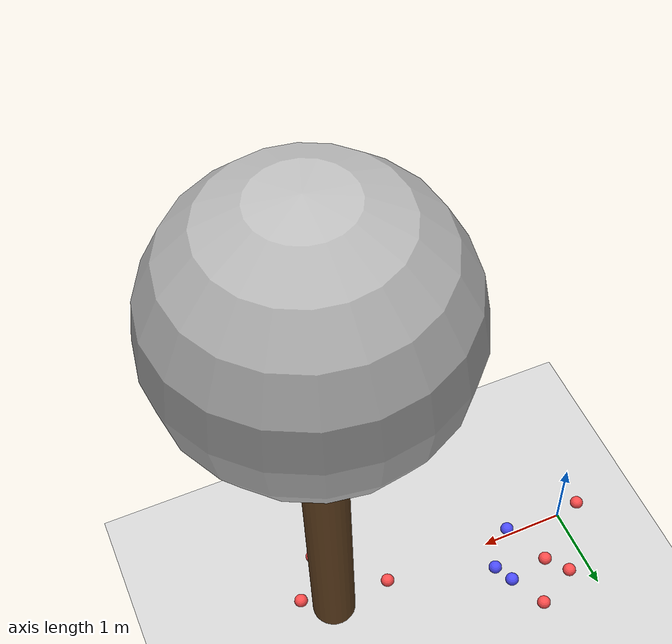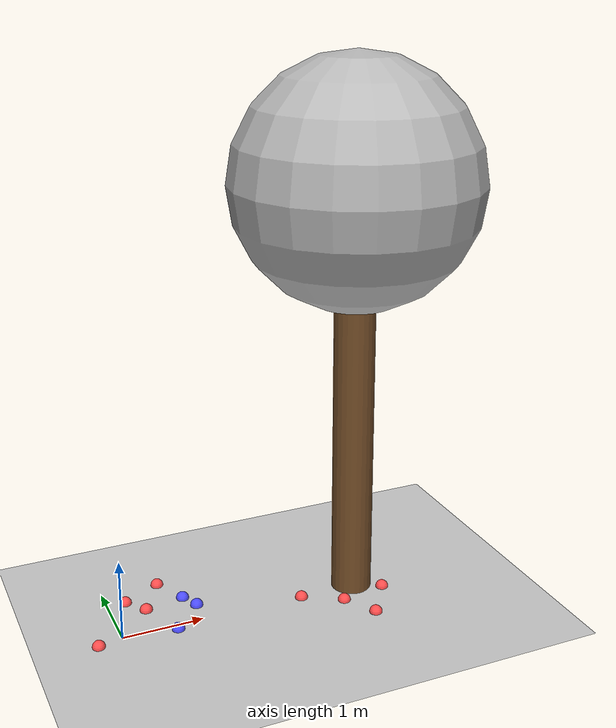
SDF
<sdf version="1.7">
 <world name="default">
  <model name="ground_plane">
   <static>1</static>
   <link name="link">
    <collision name="collision">
     <geometry><plane><normal>0 0 1</normal><size>100 100</size></plane></geometry>
     <surface>
      <contact><collide_bitmask>65535</collide_bitmask></contact>
      <friction><ode><mu>100</mu><mu2>50</mu2></ode></friction>
     </surface>
    </collision>
    <visual name="visual">
     <cast_shadows>0</cast_shadows>
     <geometry><plane><normal>0 0 1</normal><size>100 100</size></plane></geometry>
     <material>
      <script><uri>file://media/materials/scripts/gazebo.material</uri><name>Gazebo/Grey</name></script>
     </material>
    </visual>
   </link>
  </model>
  <model name="tree_simple_97">
   <static>1</static>
   <link name="link">
    <pose>0 0 0.1 0 -0 0</pose>
    <inertial>
     <mass>666</mass>
     <inertia>
      <ixx>0.0861167</ixx>
      <ixy>0</ixy>
      <ixz>0</ixz>
      <iyy>0.0861167</iyy>
      <iyz>0</iyz>
      <izz>0.0861167</izz>
     </inertia>
    </inertial>
    <collision name="collision_trunk">
     <pose>0 0 2 0 -0 0</pose>
     <geometry><cylinder><radius>0.25</radius><length>4</length></cylinder></geometry>
     <surface>
      <contact>
       <poissons_ratio>0.347</poissons_ratio>
       <elastic_modulus>8.8e+09</elastic_modulus>
       <ode><kp>100000</kp><kd>100</kd><max_vel>100</max_vel><min_depth>0.001</min_depth></ode>
      </contact>
      <friction>
       <torsional>
        <coefficient>1</coefficient>
        <use_patch_radius>0</use_patch_radius>
        <surface_radius>0.01</surface_radius>
       </torsional>
      </friction>
     </surface>
    </collision>
    <collision name="collision_treetop">
     <pose>0 0 5.2 0 -0 0</pose>
     <geometry><sphere><radius>1.5</radius></sphere></geometry>
     <surface>
      <contact>
       <poissons_ratio>0.347</poissons_ratio>
       <elastic_modulus>8.8e+09</elastic_modulus>
       <ode><kp>100000</kp><kd>100</kd><max_vel>100</max_vel><min_depth>0.001</min_depth></ode>
      </contact>
      <friction>
       <torsional>
        <coefficient>1</coefficient>
        <use_patch_radius>0</use_patch_radius>
        <surface_radius>0.01</surface_radius>
       </torsional>
      </friction>
     </surface>
    </collision>
    <visual name="trunk">
     <pose>0 0 2 0 -0 0</pose>
     <geometry><cylinder><radius>0.25</radius><length>4</length></cylinder></geometry>
     <material>
      <script>
       <uri>model://tree_simple/scripts</uri>
       <uri>model://tree_simple/materials/textures</uri>
       <name>TreeSimple/Trunk</name>
      </script>
     </material>
    </visual>
    <visual name="treetop">
     <pose>0 0 5.2 0 -0 0</pose>
     <geometry><sphere><radius>1.5</radius></sphere></geometry>
     <material>
      <script>
       <uri>model://tree_simple/scripts</uri>
       <uri>model://tree_simple/materials/textures</uri>
       <name>TreeSimple/Treetop</name>
      </script>
     </material>
    </visual>
   </link>
   <pose>3 0 -0.1 0 -0 0</pose>
  </model>
  <model name="seed_red_383">
   <link name="link">
    <inertial>
     <mass>1</mass>
     <inertia><ixx>0.1</ixx><ixy>0</ixy><ixz>0</ixz><iyy>0.1</iyy><iyz>0</iyz><izz>0.1</izz></inertia>
    </inertial>
    <visual name="visual">
     <geometry><sphere><radius>0.08</radius></sphere></geometry>
     <material>
      <script><name>Gazebo/Grey</name><uri>file://media/materials/scripts/gazebo.material</uri></script>
      <shader type="pixel"><normal_map>__default__</normal_map></shader>
      <ambient>1 0.3 0.3 1</ambient>
      <diffuse>0.7 0.7 0.7 1</diffuse>
      <specular>0.01 0.01 0.01 1</specular>
      <emissive>0 0 0 1</emissive>
     </material>
    </visual>
    <collision name="collision">
     <geometry><sphere><radius>0.0005</radius></sphere></geometry>
     <surface>
      <friction>
       <ode><mu>1</mu><mu2>1</mu2><fdir1>0 0 0</fdir1><slip1>0</slip1><slip2>0</slip2></ode>
       <torsional>
        <coefficient>1</coefficient>
        <patch_radius>0</patch_radius>
        <surface_radius>0</surface_radius>
        <use_patch_radius>1</use_patch_radius>
        <ode><slip>0</slip></ode>
       </torsional>
      </friction>
      <bounce><restitution_coefficient>0</restitution_coefficient><threshold>1e+06</threshold></bounce>
      <contact>
       <collide_without_contact>0</collide_without_contact>
       <collide_without_contact_bitmask>1</collide_without_contact_bitmask>
       <collide_bitmask>1</collide_bitmask>
       <ode>
        <soft_cfm>0</soft_cfm>
        <soft_erp>0.2</soft_erp>
        <kp>1e+13</kp>
        <kd>1</kd>
        <max_vel>0.01</max_vel>
        <min_depth>0</min_depth>
       </ode>
       <bullet>
        <split_impulse>1</split_impulse>
        <split_impulse_penetration_threshold>-0.01</split_impulse_penetration_threshold>
        <soft_cfm>0</soft_cfm>
        <soft_erp>0.2</soft_erp>
        <kp>1e+13</kp>
        <kd>1</kd>
       </bullet>
      </contact>
     </surface>
    </collision>
   </link>
   <static>0</static>
   <pose>0.23251 0.719806 0.0005 0 -0 0</pose>
  </model>
  <model name="seed_red_384">
   <link name="link">
    <inertial>
     <mass>1</mass>
     <inertia><ixx>0.1</ixx><ixy>0</ixy><ixz>0</ixz><iyy>0.1</iyy><iyz>0</iyz><izz>0.1</izz></inertia>
    </inertial>
    <visual name="visual">
     <geometry><sphere><radius>0.08</radius></sphere></geometry>
     <material>
      <script><name>Gazebo/Grey</name><uri>file://media/materials/scripts/gazebo.material</uri></script>
      <shader type="pixel"><normal_map>__default__</normal_map></shader>
      <ambient>1 0.3 0.3 1</ambient>
      <diffuse>0.7 0.7 0.7 1</diffuse>
      <specular>0.01 0.01 0.01 1</specular>
      <emissive>0 0 0 1</emissive>
     </material>
    </visual>
    <collision name="collision">
     <geometry><sphere><radius>0.0005</radius></sphere></geometry>
     <surface>
      <friction>
       <ode><mu>1</mu><mu2>1</mu2><fdir1>0 0 0</fdir1><slip1>0</slip1><slip2>0</slip2></ode>
       <torsional>
        <coefficient>1</coefficient>
        <patch_radius>0</patch_radius>
        <surface_radius>0</surface_radius>
        <use_patch_radius>1</use_patch_radius>
        <ode><slip>0</slip></ode>
       </torsional>
      </friction>
      <bounce><restitution_coefficient>0</restitution_coefficient><threshold>1e+06</threshold></bounce>
      <contact>
       <collide_without_contact>0</collide_without_contact>
       <collide_without_contact_bitmask>1</collide_without_contact_bitmask>
       <collide_bitmask>1</collide_bitmask>
       <ode>
        <soft_cfm>0</soft_cfm>
        <soft_erp>0.2</soft_erp>
        <kp>1e+13</kp>
        <kd>1</kd>
        <max_vel>0.01</max_vel>
        <min_depth>0</min_depth>
       </ode>
       <bullet>
        <split_impulse>1</split_impulse>
        <split_impulse_penetration_threshold>-0.01</split_impulse_penetration_threshold>
        <soft_cfm>0</soft_cfm>
        <soft_erp>0.2</soft_erp>
        <kp>1e+13</kp>
        <kd>1</kd>
       </bullet>
      </contact>
     </surface>
    </collision>
   </link>
   <static>0</static>
   <pose>0.426171 0.464778 0.0005 0 -0 0</pose>
  </model>
  <model name="seed_red_387">
   <link name="link">
    <inertial>
     <mass>1</mass>
     <inertia><ixx>0.1</ixx><ixy>0</ixy><ixz>0</ixz><iyy>0.1</iyy><iyz>0</iyz><izz>0.1</izz></inertia>
    </inertial>
    <visual name="visual">
     <geometry><sphere><radius>0.08</radius></sphere></geometry>
     <material>
      <script><name>Gazebo/Grey</name><uri>file://media/materials/scripts/gazebo.material</uri></script>
      <shader type="pixel"><normal_map>__default__</normal_map></shader>
      <ambient>1 0.3 0.3 1</ambient>
      <diffuse>0.7 0.7 0.7 1</diffuse>
      <specular>0.01 0.01 0.01 1</specular>
      <emissive>0 0 0 1</emissive>
     </material>
    </visual>
    <collision name="collision">
     <geometry><sphere><radius>0.0005</radius></sphere></geometry>
     <surface>
      <friction>
       <ode><mu>1</mu><mu2>1</mu2><fdir1>0 0 0</fdir1><slip1>0</slip1><slip2>0</slip2></ode>
       <torsional>
        <coefficient>1</coefficient>
        <patch_radius>0</patch_radius>
        <surface_radius>0</surface_radius>
        <use_patch_radius>1</use_patch_radius>
        <ode><slip>0</slip></ode>
       </torsional>
      </friction>
      <bounce><restitution_coefficient>0</restitution_coefficient><threshold>1e+06</threshold></bounce>
      <contact>
       <collide_without_contact>0</collide_without_contact>
       <collide_without_contact_bitmask>1</collide_without_contact_bitmask>
       <collide_bitmask>1</collide_bitmask>
       <ode>
        <soft_cfm>0</soft_cfm>
        <soft_erp>0.2</soft_erp>
        <kp>1e+13</kp>
        <kd>1</kd>
        <max_vel>0.01</max_vel>
        <min_depth>0</min_depth>
       </ode>
       <bullet>
        <split_impulse>1</split_impulse>
        <split_impulse_penetration_threshold>-0.01</split_impulse_penetration_threshold>
        <soft_cfm>0</soft_cfm>
        <soft_erp>0.2</soft_erp>
        <kp>1e+13</kp>
        <kd>1</kd>
       </bullet>
      </contact>
     </surface>
    </collision>
   </link>
   <static>0</static>
   <pose>0.718031 0.974959 0.0005 0 -0 0</pose>
  </model>
  <model name="seed_red_388">
   <link name="link">
    <inertial>
     <mass>1</mass>
     <inertia><ixx>0.1</ixx><ixy>0</ixy><ixz>0</ixz><iyy>0.1</iyy><iyz>0</iyz><izz>0.1</izz></inertia>
    </inertial>
    <visual name="visual">
     <geometry><sphere><radius>0.08</radius></sphere></geometry>
     <material>
      <script><name>Gazebo/Grey</name><uri>file://media/materials/scripts/gazebo.material</uri></script>
      <shader type="pixel"><normal_map>__default__</normal_map></shader>
      <ambient>1 0.3 0.3 1</ambient>
      <diffuse>0.7 0.7 0.7 1</diffuse>
      <specular>0.01 0.01 0.01 1</specular>
      <emissive>0 0 0 1</emissive>
     </material>
    </visual>
    <collision name="collision">
     <geometry><sphere><radius>0.0005</radius></sphere></geometry>
     <surface>
      <friction>
       <ode><mu>1</mu><mu2>1</mu2><fdir1>0 0 0</fdir1><slip1>0</slip1><slip2>0</slip2></ode>
       <torsional>
        <coefficient>1</coefficient>
        <patch_radius>0</patch_radius>
        <surface_radius>0</surface_radius>
        <use_patch_radius>1</use_patch_radius>
        <ode><slip>0</slip></ode>
       </torsional>
      </friction>
      <bounce><restitution_coefficient>0</restitution_coefficient><threshold>1e+06</threshold></bounce>
      <contact>
       <collide_without_contact>0</collide_without_contact>
       <collide_without_contact_bitmask>1</collide_without_contact_bitmask>
       <collide_bitmask>1</collide_bitmask>
       <ode>
        <soft_cfm>0</soft_cfm>
        <soft_erp>0.2</soft_erp>
        <kp>1e+13</kp>
        <kd>1</kd>
        <max_vel>0.01</max_vel>
        <min_depth>0</min_depth>
       </ode>
       <bullet>
        <split_impulse>1</split_impulse>
        <split_impulse_penetration_threshold>-0.01</split_impulse_penetration_threshold>
        <soft_cfm>0</soft_cfm>
        <soft_erp>0.2</soft_erp>
        <kp>1e+13</kp>
        <kd>1</kd>
       </bullet>
      </contact>
     </surface>
    </collision>
   </link>
   <static>0</static>
   <pose>-0.308522 -0.069671 0.0005 0 -0 0</pose>
  </model>
  <model name="seed_blue_201">
   <link name="link">
    <inertial>
     <mass>1</mass>
     <inertia><ixx>0.1</ixx><ixy>0</ixy><ixz>0</ixz><iyy>0.1</iyy><iyz>0</iyz><izz>0.1</izz></inertia>
    </inertial>
    <visual name="visual">
     <geometry><sphere><radius>0.08</radius></sphere></geometry>
     <material>
      <script><name>Gazebo/Grey</name><uri>file://media/materials/scripts/gazebo.material</uri></script>
      <shader type="pixel"><normal_map>__default__</normal_map></shader>
      <ambient>0.3 0.3 1 1</ambient>
      <diffuse>0.7 0.7 0.7 1</diffuse>
      <specular>0.01 0.01 0.01 1</specular>
      <emissive>0 0 0 1</emissive>
     </material>
    </visual>
    <collision name="collision">
     <geometry><sphere><radius>0.0005</radius></sphere></geometry>
     <surface>
      <friction>
       <ode><mu>1</mu><mu2>1</mu2><fdir1>0 0 0</fdir1><slip1>0</slip1><slip2>0</slip2></ode>
       <torsional>
        <coefficient>1</coefficient>
        <patch_radius>0</patch_radius>
        <surface_radius>0</surface_radius>
        <use_patch_radius>1</use_patch_radius>
        <ode><slip>0</slip></ode>
       </torsional>
      </friction>
      <bounce><restitution_coefficient>0</restitution_coefficient><threshold>1e+06</threshold></bounce>
      <contact>
       <collide_without_contact>0</collide_without_contact>
       <collide_without_contact_bitmask>1</collide_without_contact_bitmask>
       <collide_bitmask>1</collide_bitmask>
       <ode>
        <soft_cfm>0</soft_cfm>
        <soft_erp>0.2</soft_erp>
        <kp>1e+13</kp>
        <kd>1</kd>
        <max_vel>0.01</max_vel>
        <min_depth>0</min_depth>
       </ode>
       <bullet>
        <split_impulse>1</split_impulse>
        <split_impulse_penetration_threshold>-0.01</split_impulse_penetration_threshold>
        <soft_cfm>0</soft_cfm>
        <soft_erp>0.2</soft_erp>
        <kp>1e+13</kp>
        <kd>1</kd>
       </bullet>
      </contact>
     </surface>
    </collision>
   </link>
   <static>0</static>
   <pose>0.660975 -0.086544 0.0005 0 -0 0</pose>
  </model>
  <model name="seed_blue_202">
   <link name="link">
    <inertial>
     <mass>1</mass>
     <inertia><ixx>0.1</ixx><ixy>0</ixy><ixz>0</ixz><iyy>0.1</iyy><iyz>0</iyz><izz>0.1</izz></inertia>
    </inertial>
    <visual name="visual">
     <geometry><sphere><radius>0.08</radius></sphere></geometry>
     <material>
      <script><name>Gazebo/Grey</name><uri>file://media/materials/scripts/gazebo.material</uri></script>
      <shader type="pixel"><normal_map>__default__</normal_map></shader>
      <ambient>0.3 0.3 1 1</ambient>
      <diffuse>0.7 0.7 0.7 1</diffuse>
      <specular>0.01 0.01 0.01 1</specular>
      <emissive>0 0 0 1</emissive>
     </material>
    </visual>
    <collision name="collision">
     <geometry><sphere><radius>0.0005</radius></sphere></geometry>
     <surface>
      <friction>
       <ode><mu>1</mu><mu2>1</mu2><fdir1>0 0 0</fdir1><slip1>0</slip1><slip2>0</slip2></ode>
       <torsional>
        <coefficient>1</coefficient>
        <patch_radius>0</patch_radius>
        <surface_radius>0</surface_radius>
        <use_patch_radius>1</use_patch_radius>
        <ode><slip>0</slip></ode>
       </torsional>
      </friction>
      <bounce><restitution_coefficient>0</restitution_coefficient><threshold>1e+06</threshold></bounce>
      <contact>
       <collide_without_contact>0</collide_without_contact>
       <collide_without_contact_bitmask>1</collide_without_contact_bitmask>
       <collide_bitmask>1</collide_bitmask>
       <ode>
        <soft_cfm>0</soft_cfm>
        <soft_erp>0.2</soft_erp>
        <kp>1e+13</kp>
        <kd>1</kd>
        <max_vel>0.01</max_vel>
        <min_depth>0</min_depth>
       </ode>
       <bullet>
        <split_impulse>1</split_impulse>
        <split_impulse_penetration_threshold>-0.01</split_impulse_penetration_threshold>
        <soft_cfm>0</soft_cfm>
        <soft_erp>0.2</soft_erp>
        <kp>1e+13</kp>
        <kd>1</kd>
       </bullet>
      </contact>
     </surface>
    </collision>
   </link>
   <static>0</static>
   <pose>1.03258 0.326767 0.0005 0 -0 0</pose>
  </model>
  <model name="seed_blue_204">
   <link name="link">
    <inertial>
     <mass>1</mass>
     <inertia><ixx>0.1</ixx><ixy>0</ixy><ixz>0</ixz><iyy>0.1</iyy><iyz>0</iyz><izz>0.1</izz></inertia>
    </inertial>
    <visual name="visual">
     <geometry><sphere><radius>0.08</radius></sphere></geometry>
     <material>
      <script><name>Gazebo/Grey</name><uri>file://media/materials/scripts/gazebo.material</uri></script>
      <shader type="pixel"><normal_map>__default__</normal_map></shader>
      <ambient>0.3 0.3 1 1</ambient>
      <diffuse>0.7 0.7 0.7 1</diffuse>
      <specular>0.01 0.01 0.01 1</specular>
      <emissive>0 0 0 1</emissive>
     </material>
    </visual>
    <collision name="collision">
     <geometry><sphere><radius>0.0005</radius></sphere></geometry>
     <surface>
      <friction>
       <ode><mu>1</mu><mu2>1</mu2><fdir1>0 0 0</fdir1><slip1>0</slip1><slip2>0</slip2></ode>
       <torsional>
        <coefficient>1</coefficient>
        <patch_radius>0</patch_radius>
        <surface_radius>0</surface_radius>
        <use_patch_radius>1</use_patch_radius>
        <ode><slip>0</slip></ode>
       </torsional>
      </friction>
      <bounce><restitution_coefficient>0</restitution_coefficient><threshold>1e+06</threshold></bounce>
      <contact>
       <collide_without_contact>0</collide_without_contact>
       <collide_without_contact_bitmask>1</collide_without_contact_bitmask>
       <collide_bitmask>1</collide_bitmask>
       <ode>
        <soft_cfm>0</soft_cfm>
        <soft_erp>0.2</soft_erp>
        <kp>1e+13</kp>
        <kd>1</kd>
        <max_vel>0.01</max_vel>
        <min_depth>0</min_depth>
       </ode>
       <bullet>
        <split_impulse>1</split_impulse>
        <split_impulse_penetration_threshold>-0.01</split_impulse_penetration_threshold>
        <soft_cfm>0</soft_cfm>
        <soft_erp>0.2</soft_erp>
        <kp>1e+13</kp>
        <kd>1</kd>
       </bullet>
      </contact>
     </surface>
    </collision>
   </link>
   <static>0</static>
   <pose>0.92237 0.552096 0.0005 0 -0 0</pose>
  </model>
  <model name="seed_red_389">
   <link name="link">
    <inertial>
     <mass>1</mass>
     <inertia><ixx>0.1</ixx><ixy>0</ixy><ixz>0</ixz><iyy>0.1</iyy><iyz>0</iyz><izz>0.1</izz></inertia>
    </inertial>
    <visual name="visual">
     <geometry><sphere><radius>0.08</radius></sphere></geometry>
     <material>
      <script><name>Gazebo/Grey</name><uri>file://media/materials/scripts/gazebo.material</uri></script>
      <shader type="pixel"><normal_map>__default__</normal_map></shader>
      <ambient>1 0.3 0.3 1</ambient>
      <diffuse>0.7 0.7 0.7 1</diffuse>
      <specular>0.01 0.01 0.01 1</specular>
      <emissive>0 0 0 1</emissive>
     </material>
    </visual>
    <collision name="collision">
     <geometry><sphere><radius>0.0005</radius></sphere></geometry>
     <surface>
      <friction>
       <ode><mu>1</mu><mu2>1</mu2><fdir1>0 0 0</fdir1><slip1>0</slip1><slip2>0</slip2></ode>
       <torsional>
        <coefficient>1</coefficient>
        <patch_radius>0</patch_radius>
        <surface_radius>0</surface_radius>
        <use_patch_radius>1</use_patch_radius>
        <ode><slip>0</slip></ode>
       </torsional>
      </friction>
      <bounce><restitution_coefficient>0</restitution_coefficient><threshold>1e+06</threshold></bounce>
      <contact>
       <collide_without_contact>0</collide_without_contact>
       <collide_without_contact_bitmask>1</collide_without_contact_bitmask>
       <collide_bitmask>1</collide_bitmask>
       <ode>
        <soft_cfm>0</soft_cfm>
        <soft_erp>0.2</soft_erp>
        <kp>1e+13</kp>
        <kd>1</kd>
        <max_vel>0.01</max_vel>
        <min_depth>0</min_depth>
       </ode>
       <bullet>
        <split_impulse>1</split_impulse>
        <split_impulse_penetration_threshold>-0.01</split_impulse_penetration_threshold>
        <soft_cfm>0</soft_cfm>
        <soft_erp>0.2</soft_erp>
        <kp>1e+13</kp>
        <kd>1</kd>
       </bullet>
      </contact>
     </surface>
    </collision>
   </link>
   <static>0</static>
   <pose>2.99822 -0.703951 0.0005 0 -0 0</pose>
  </model>
  <model name="seed_red_390">
   <link name="link">
    <inertial>
     <mass>1</mass>
     <inertia><ixx>0.1</ixx><ixy>0</ixy><ixz>0</ixz><iyy>0.1</iyy><iyz>0</iyz><izz>0.1</izz></inertia>
    </inertial>
    <visual name="visual">
     <geometry><sphere><radius>0.08</radius></sphere></geometry>
     <material>
      <script><name>Gazebo/Grey</name><uri>file://media/materials/scripts/gazebo.material</uri></script>
      <shader type="pixel"><normal_map>__default__</normal_map></shader>
      <ambient>1 0.3 0.3 1</ambient>
      <diffuse>0.7 0.7 0.7 1</diffuse>
      <specular>0.01 0.01 0.01 1</specular>
      <emissive>0 0 0 1</emissive>
     </material>
    </visual>
    <collision name="collision">
     <geometry><sphere><radius>0.0005</radius></sphere></geometry>
     <surface>
      <friction>
       <ode><mu>1</mu><mu2>1</mu2><fdir1>0 0 0</fdir1><slip1>0</slip1><slip2>0</slip2></ode>
       <torsional>
        <coefficient>1</coefficient>
        <patch_radius>0</patch_radius>
        <surface_radius>0</surface_radius>
        <use_patch_radius>1</use_patch_radius>
        <ode><slip>0</slip></ode>
       </torsional>
      </friction>
      <bounce><restitution_coefficient>0</restitution_coefficient><threshold>1e+06</threshold></bounce>
      <contact>
       <collide_without_contact>0</collide_without_contact>
       <collide_without_contact_bitmask>1</collide_without_contact_bitmask>
       <collide_bitmask>1</collide_bitmask>
       <ode>
        <soft_cfm>0</soft_cfm>
        <soft_erp>0.2</soft_erp>
        <kp>1e+13</kp>
        <kd>1</kd>
        <max_vel>0.01</max_vel>
        <min_depth>0</min_depth>
       </ode>
       <bullet>
        <split_impulse>1</split_impulse>
        <split_impulse_penetration_threshold>-0.01</split_impulse_penetration_threshold>
        <soft_cfm>0</soft_cfm>
        <soft_erp>0.2</soft_erp>
        <kp>1e+13</kp>
        <kd>1</kd>
       </bullet>
      </contact>
     </surface>
    </collision>
   </link>
   <static>0</static>
   <pose>3.33842 -0.208827 0.0005 0 -0 0</pose>
  </model>
  <model name="seed_red_392">
   <link name="link">
    <inertial>
     <mass>1</mass>
     <inertia><ixx>0.1</ixx><ixy>0</ixy><ixz>0</ixz><iyy>0.1</iyy><iyz>0</iyz><izz>0.1</izz></inertia>
    </inertial>
    <visual name="visual">
     <geometry><sphere><radius>0.08</radius></sphere></geometry>
     <material>
      <script><name>Gazebo/Grey</name><uri>file://media/materials/scripts/gazebo.material</uri></script>
      <shader type="pixel"><normal_map>__default__</normal_map></shader>
      <ambient>1 0.3 0.3 1</ambient>
      <diffuse>0.7 0.7 0.7 1</diffuse>
      <specular>0.01 0.01 0.01 1</specular>
      <emissive>0 0 0 1</emissive>
     </material>
    </visual>
    <collision name="collision">
     <geometry><sphere><radius>0.0005</radius></sphere></geometry>
     <surface>
      <friction>
       <ode><mu>1</mu><mu2>1</mu2><fdir1>0 0 0</fdir1><slip1>0</slip1><slip2>0</slip2></ode>
       <torsional>
        <coefficient>1</coefficient>
        <patch_radius>0</patch_radius>
        <surface_radius>0</surface_radius>
        <use_patch_radius>1</use_patch_radius>
        <ode><slip>0</slip></ode>
       </torsional>
      </friction>
      <bounce><restitution_coefficient>0</restitution_coefficient><threshold>1e+06</threshold></bounce>
      <contact>
       <collide_without_contact>0</collide_without_contact>
       <collide_without_contact_bitmask>1</collide_without_contact_bitmask>
       <collide_bitmask>1</collide_bitmask>
       <ode>
        <soft_cfm>0</soft_cfm>
        <soft_erp>0.2</soft_erp>
        <kp>1e+13</kp>
        <kd>1</kd>
        <max_vel>0.01</max_vel>
        <min_depth>0</min_depth>
       </ode>
       <bullet>
        <split_impulse>1</split_impulse>
        <split_impulse_penetration_threshold>-0.01</split_impulse_penetration_threshold>
        <soft_cfm>0</soft_cfm>
        <soft_erp>0.2</soft_erp>
        <kp>1e+13</kp>
        <kd>1</kd>
       </bullet>
      </contact>
     </surface>
    </collision>
   </link>
   <static>0</static>
   <pose>2.75907 -0.308331 0.0005 0 -0 0</pose>
  </model>
  <model name="seed_red_393">
   <link name="link">
    <inertial>
     <mass>1</mass>
     <inertia><ixx>0.1</ixx><ixy>0</ixy><ixz>0</ixz><iyy>0.1</iyy><iyz>0</iyz><izz>0.1</izz></inertia>
    </inertial>
    <visual name="visual">
     <geometry><sphere><radius>0.08</radius></sphere></geometry>
     <material>
      <script><name>Gazebo/Grey</name><uri>file://media/materials/scripts/gazebo.material</uri></script>
      <shader type="pixel"><normal_map>__default__</normal_map></shader>
      <ambient>1 0.3 0.3 1</ambient>
      <diffuse>0.7 0.7 0.7 1</diffuse>
      <specular>0.01 0.01 0.01 1</specular>
      <emissive>0 0 0 1</emissive>
     </material>
    </visual>
    <collision name="collision">
     <geometry><sphere><radius>0.0005</radius></sphere></geometry>
     <surface>
      <friction>
       <ode><mu>1</mu><mu2>1</mu2><fdir1>0 0 0</fdir1><slip1>0</slip1><slip2>0</slip2></ode>
       <torsional>
        <coefficient>1</coefficient>
        <patch_radius>0</patch_radius>
        <surface_radius>0</surface_radius>
        <use_patch_radius>1</use_patch_radius>
        <ode><slip>0</slip></ode>
       </torsional>
      </friction>
      <bounce><restitution_coefficient>0</restitution_coefficient><threshold>1e+06</threshold></bounce>
      <contact>
       <collide_without_contact>0</collide_without_contact>
       <collide_without_contact_bitmask>1</collide_without_contact_bitmask>
       <collide_bitmask>1</collide_bitmask>
       <ode>
        <soft_cfm>0</soft_cfm>
        <soft_erp>0.2</soft_erp>
        <kp>1e+13</kp>
        <kd>1</kd>
        <max_vel>0.01</max_vel>
        <min_depth>0</min_depth>
       </ode>
       <bullet>
        <split_impulse>1</split_impulse>
        <split_impulse_penetration_threshold>-0.01</split_impulse_penetration_threshold>
        <soft_cfm>0</soft_cfm>
        <soft_erp>0.2</soft_erp>
        <kp>1e+13</kp>
        <kd>1</kd>
       </bullet>
      </contact>
     </surface>
    </collision>
   </link>
   <static>0</static>
   <pose>2.29231 -0.038951 0.0005 0 -0 0</pose>
  </model>
 </world>
</sdf>
